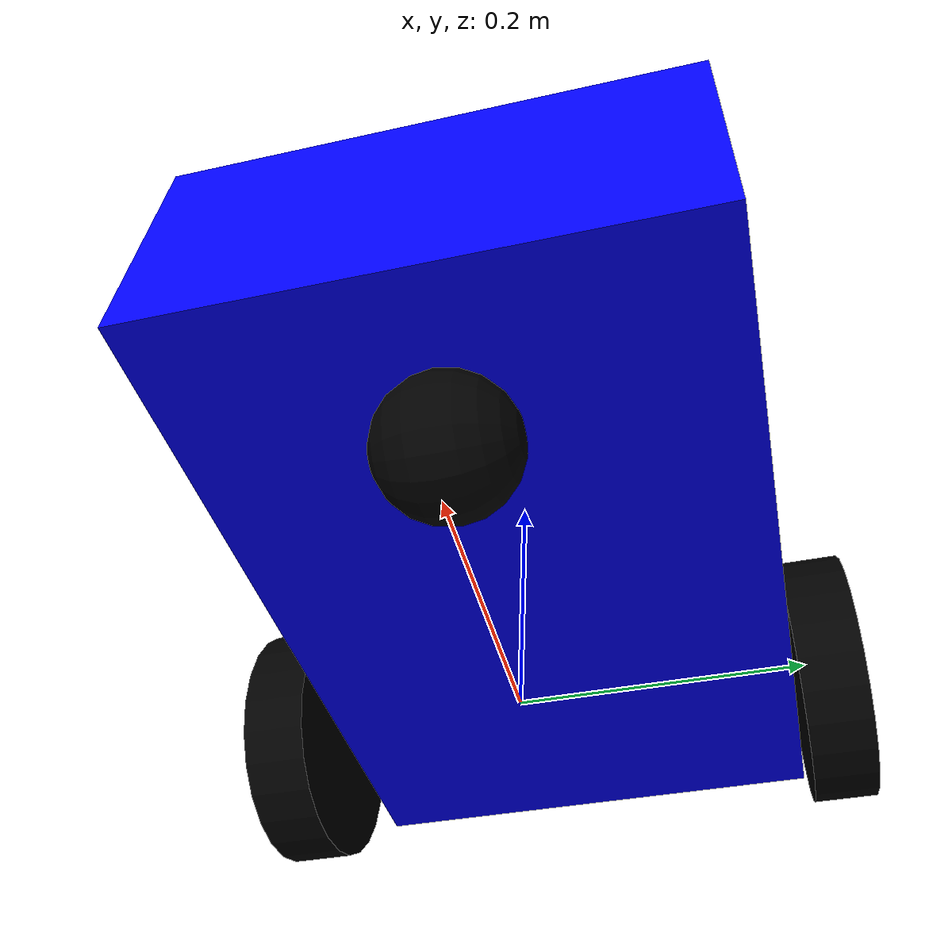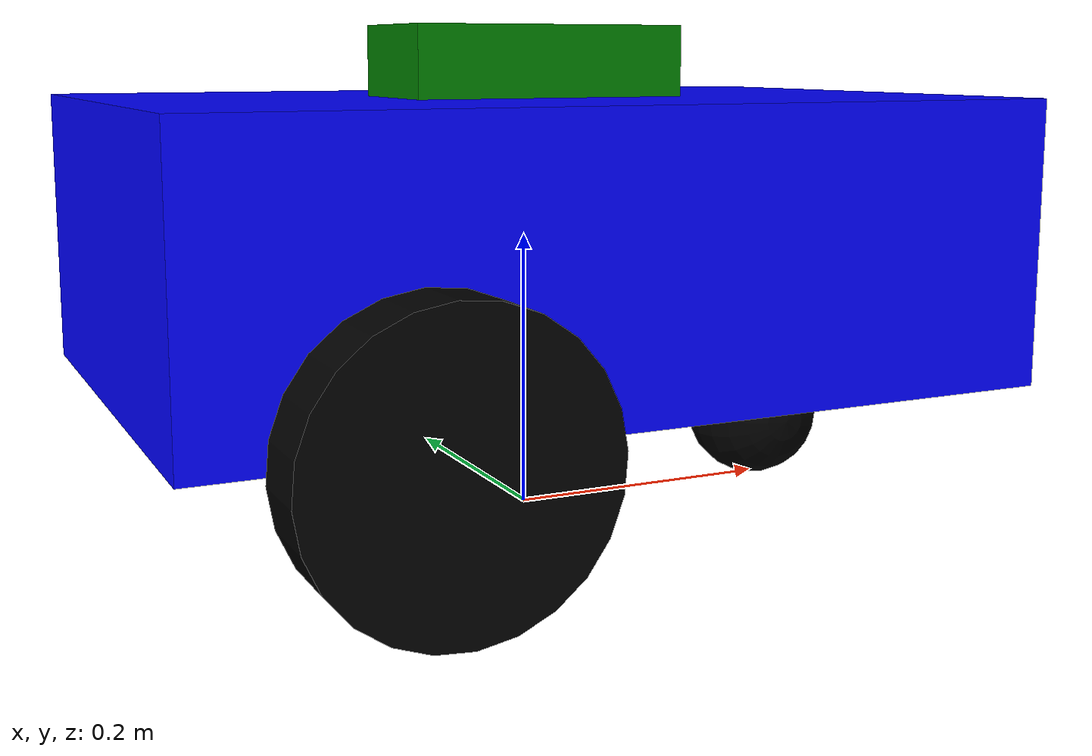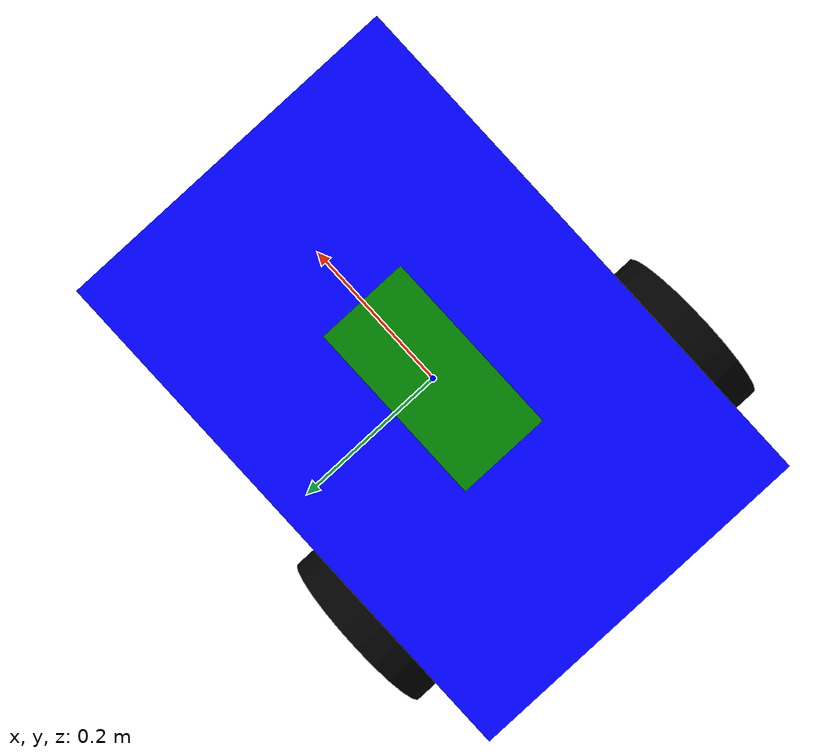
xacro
<?xml version= "1.0"?>
<robot name = "my_robot" xmlns:xacro="http://www.ros.org/wiki/xacro">

    <xacro:include filename="$(find my_robot_description)/urdf/common_properties.xacro"/>
    <xacro:include filename="$(find my_robot_description)/urdf/mobile_base.xacro"/>
    <xacro:include filename="$(find my_robot_description)/urdf/mobile_base_gazebo.xacro"/>

</robot>

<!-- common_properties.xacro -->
<robot xmlns:xacro="http://www.ros.org/wiki/xacro">

    <material name= "green">
        <color rgba ="0 0.5 0 1" />
    </material>

    <material name= "black">
        <color rgba ="0 0 0 1" />
    </material>

    <material name= "blue">
        <color rgba ="0 0 1 1" />
    </material>

<xacro:macro name="box_inertia" params="m x y z o_xyz o_rpy">
    <inertial>
        <origin xyz="${o_xyz}" rpy="${o_rpy}"/>
        <mass value="${m}"/>
        <inertia
            ixx="${(m/12) * (y*y + z*z)}"
            iyy="${(m/12) * (x*x + z*z)}"
            izz="${(m/12) * (x*x + y*y)}"
            ixy="0" ixz="0" iyz="0"/>
    </inertial>
</xacro:macro>

</robot>

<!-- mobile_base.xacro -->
<robot xmlns:xacro="http://www.ros.org/wiki/xacro">

    <xacro:property name="wheel_radius" value="0.1"/>
    <xacro:property name="wheel_width"  value="0.05"/>
    <xacro:property name="base_length"  value="0.6"/>
    <xacro:property name="base_width"  value="0.4"/>
    <xacro:property name="base_height"  value="0.2"/>

    <link name= "base_footprint_link">
    </link>

    <link name= "base_link">
        <visual>
            <geometry>
                <box size = "${base_length} ${base_width} ${base_height}" /> <!-- all dimensions are in meters -->
            </geometry>
            <origin xyz = "0 0 0.1" rpy = "0 0 0"/>
            <material name= "blue" />
        </visual>
        <collision>
            <geometry>
                <box size = "${base_length} ${base_width} ${base_height}" /> <!-- all dimensions are in meters -->
            </geometry>
            <origin xyz = "0 0 0.1" rpy = "0 0 0"/>
        </collision>
        <xacro:box_inertia m="5.0" x="${base_length}" y="${base_width}" z="${base_height}"
                            o_xyz="0 0 ${base_height / 2}" o_rpy="0 0 0"
        />
    </link>

    <link name= "imu_link">
        <visual>
                <geometry>
                    <box size = "0.2 0.1 0.05" />
                </geometry>
            <origin xyz = "0 0 0.025" rpy = "0 0 0"/>
            <material name= "green" />
        </visual>
        <collision>
            <geometry>
                <box size = "0.2 0.1 0.05" />
            </geometry>
            <origin xyz = "0 0 0.025" rpy = "0 0 0"/>
        </collision>
        <xacro:box_inertia m="0.2" x="${base_height}" y="${base_height / 2}" z="0.05"
                            o_xyz="0 0 0.025" o_rpy="0 0 0" />
    </link>

    <xacro:macro name="wheel_link" params="prefix name" >
        <link name= "${prefix}${name}">
            <visual>
                <geometry>
                    <cylinder radius = "${wheel_radius}" length="${wheel_width}"/>
                </geometry>
                <origin xyz = "0 0 0" rpy = "${pi / 2} 0 0"/>
                <material name= "black" />
            </visual>
            <collision>
                <geometry>
                    <sphere radius = "${wheel_radius}"/>
                </geometry>
                <origin xyz = "0 0 0" rpy = "${pi / 2} 0 0"/>
            </collision>
            <inertial>
                <origin xyz="0 0 0" rpy="0 0 0"/>
                <mass value="0.5"/>
                <inertia
                    ixx="${0.5 * 0.5 * wheel_radius * wheel_radius}"
                    iyy="${(1/12) * 0.5 * (3 * wheel_radius * wheel_radius + wheel_width * wheel_width)}"
                    izz="${(1/12) * 0.5 * (3 * wheel_radius * wheel_radius + wheel_width * wheel_width)}"
                    ixy="0" ixz="0" iyz="0"/>
            </inertial>
        </link>
    </xacro:macro>

    <xacro:wheel_link prefix="left_"  name="wheel_link"/>
    <xacro:wheel_link prefix="right_" name="wheel_link"/>

    <link name= "caster_wheel_link">
        <visual>
            <geometry>
                <sphere radius = "0.05"/>
            </geometry>
            <origin xyz = "0 0 -0.025" rpy = "${pi / 2} 0 0"/>
            <material name= "black" />
        </visual>
        <collision>
            <geometry>
                <sphere radius = "0.05"/>
            </geometry>
            <origin xyz = "0 0 -0.025" rpy = "${pi / 2} 0 0"/>
        </collision>
        <inertial>
            <origin xyz="0 0 0" rpy="0 0 0"/>
            <mass value="0.2"/>
            <inertia
                ixx="${(2/5) * 0.2 * 0.05 * 0.05}"
                iyy="${(2/5) * 0.2 * 0.05 * 0.05}"
                izz="${(2/5) * 0.2 * 0.05 * 0.05}"
                ixy="0" ixz="0" iyz="0"/>
        </inertial>
    </link>

    <joint name = "base_footprint_joint" type="fixed" >
        <parent link="base_footprint_link" />
        <child link="base_link" />
        <origin xyz="0 0 0.1" rpy="0 0 0" />
    </joint>

    <joint name="base_imu_joint" type="fixed">
        <parent link="base_link" />
        <child link="imu_link" />
        <origin xyz="0 0 ${base_height}" rpy="0 0 0"/>
    </joint>

    <joint name="base_left_wheel_joint" type="continuous">
        <parent link="base_link" />
        <child link="left_wheel_link" />
        <origin xyz="-0.15 -0.225 0" rpy="0 1 0"/>
        <axis xyz="0 1 0" />
    </joint>

    <joint name="base_right_wheel_joint" type="continuous">
        <parent link="base_link" />
        <child link="right_wheel_link" />
        <origin xyz="-0.15 0.225 0" rpy="0 1 0"/>
        <axis xyz="0 1 0" />
    </joint>

    <joint name="base_caster_wheel_joint" type="fixed">
        <parent link="base_link" />
        <child link="caster_wheel_link" />
        <origin xyz="${base_height} 0 -0.025" rpy="0 0 0"/>
    </joint>

</robot>
